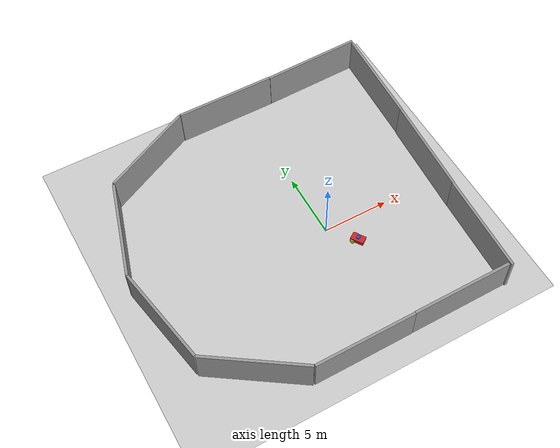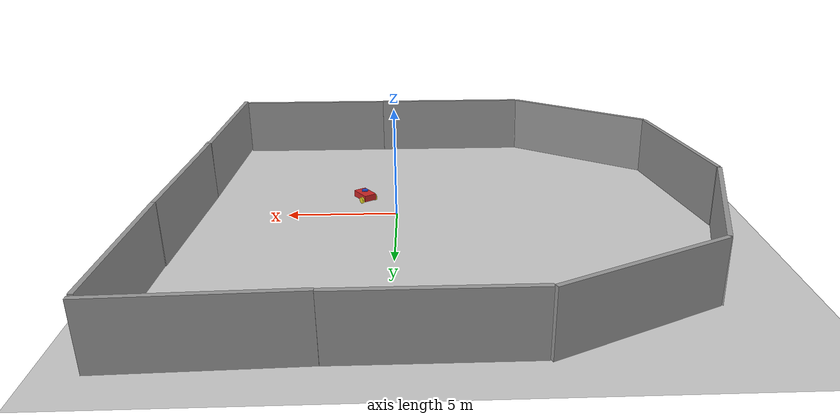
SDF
<sdf version="1.6">
 <world name="default">
  <light name="sun" type="directional">
   <pose>0 0 10 0 -0 0</pose>
   <diffuse>0.8 0.8 0.8 1</diffuse>
   <specular>0.2 0.2 0.2 1</specular>
   <attenuation>
    <range>1000</range>
    <constant>0.9</constant>
    <linear>0.01</linear>
    <quadratic>0.001</quadratic>
   </attenuation>
   <direction>-0.5 0.1 -0.9</direction>
   <spot><inner_angle>0</inner_angle><outer_angle>0</outer_angle><falloff>0</falloff></spot>
  </light>
  <model name="ground_plane">
   <static>1</static>
   <link name="link">
    <collision name="collision">
     <geometry><plane><normal>0 0 1</normal><size>100 100</size></plane></geometry>
     <surface><friction><ode><mu>100</mu><mu2>50</mu2></ode></friction></surface>
    </collision>
    <visual name="visual">
     <cast_shadows>0</cast_shadows>
     <geometry><plane><normal>0 0 1</normal><size>100 100</size></plane></geometry>
     <material>
      <script><uri>file://media/materials/scripts/gazebo.material</uri><name>Gazebo/Grey</name></script>
     </material>
    </visual>
   </link>
  </model>
  <gravity>0 0 -9.8</gravity>
  <magnetic_field>6e-06 2.3e-05 -4.2e-05</magnetic_field>
  <atmosphere type="adiabatic"/>
  <physics type="ode">
   <max_step_size>0.001</max_step_size>
   <real_time_factor>1</real_time_factor>
   <real_time_update_rate>1000</real_time_update_rate>
  </physics>
  <scene><ambient>0.4 0.4 0.4 1</ambient><background>0.7 0.7 0.7 1</background><shadows>1</shadows></scene>
  <audio><device>default</device></audio>
  <spherical_coordinates>
   <surface_model>EARTH_WGS84</surface_model>
   <latitude_deg>0</latitude_deg>
   <longitude_deg>0</longitude_deg>
   <elevation>0</elevation>
   <heading_deg>0</heading_deg>
  </spherical_coordinates>
  <model name="differential_drive_robot">
   <link name="base_footprint">
    <inertial>
     <pose>0.020363 0 0.00543 0 -0 0</pose>
     <mass>564.423</mass>
     <inertia>
      <ixx>20.301</ixx>
      <ixy>0</ixy>
      <ixz>1.21176</ixz>
      <iyy>49.531</iyy>
      <iyz>0</iyz>
      <izz>58.9506</izz>
     </inertia>
    </inertial>
    <collision name="base_footprint_fixed_joint_lump__base_link_collision">
     <geometry><box><size>1 0.6 0.3</size></box></geometry>
     <surface><friction><ode><mu>0.2</mu><mu2>0.2</mu2></ode></friction></surface>
    </collision>
    <collision name="base_footprint_fixed_joint_lump__caster_link_collision_1">
     <pose>0.3 0 -0.1 0 -0 0</pose>
     <geometry><sphere><radius>0.15</radius></sphere></geometry>
     <surface><friction><ode><mu>2e-06</mu><mu2>2e-06</mu2></ode></friction></surface>
    </collision>
    <collision name="base_footprint_fixed_joint_lump__lidar_link_collision_2">
     <pose>0 0 0.24 0 -0 0</pose>
     <geometry><cylinder><length>0.05</length><radius>0.15</radius></cylinder></geometry>
     <surface><friction><ode><mu>0.2</mu><mu2>0.2</mu2></ode></friction></surface>
    </collision>
    <visual name="base_footprint_fixed_joint_lump__base_link_visual">
     <geometry><box><size>1 0.6 0.3</size></box></geometry>
     <material>
      <script><name>Gazebo/Red</name><uri>file://media/materials/scripts/gazebo.material</uri></script>
     </material>
    </visual>
    <visual name="base_footprint_fixed_joint_lump__caster_link_visual_1">
     <pose>0.3 0 -0.1 0 -0 0</pose>
     <geometry><sphere><radius>0.15</radius></sphere></geometry>
     <material>
      <script><name>Gazebo/Blue</name><uri>file://media/materials/scripts/gazebo.material</uri></script>
     </material>
    </visual>
    <visual name="base_footprint_fixed_joint_lump__lidar_link_visual_2">
     <pose>0 0 0.24 0 -0 0</pose>
     <geometry><cylinder><length>0.05</length><radius>0.15</radius></cylinder></geometry>
     <material>
      <script><name>Gazebo/Blue</name><uri>file://media/materials/scripts/gazebo.material</uri></script>
     </material>
    </visual>
    <sensor name="lidar_sensor" type="ray">
     <visualize>1</visualize>
     <update_rate>10</update_rate>
     <ray>
      <scan>
       <horizontal>
        <samples>720</samples>
        <resolution>1</resolution>
        <min_angle>-1.57</min_angle>
        <max_angle>1.57</max_angle>
       </horizontal>
       <vertical><samples>1</samples><min_angle>0</min_angle><max_angle>0</max_angle></vertical>
      </scan>
      <range><min>0</min><max>20</max><resolution>0.05</resolution></range>
     </ray>
     <plugin name="lidar" filename="libgazebo_ros_ray_sensor.so">
      <ros><namespace>/</namespace><remapping>~/out:=scan</remapping></ros>
      <output_type>sensor_msgs/LaserScan</output_type>
      <frame_name>lidar_link</frame_name>
     </plugin>
     <pose>0 0 0.18 0 -0 0</pose>
    </sensor>
   </link>
   <joint name="wheel1_joint" type="revolute">
    <pose relative_to="base_footprint">-0.3 -0.35 -0.1 0 -0 0</pose>
    <parent>base_footprint</parent>
    <child>wheel1_link</child>
    <axis>
     <xyz>0 1 0</xyz>
     <limit><effort>1000</effort><velocity>1000</velocity><lower>-1e+16</lower><upper>1e+16</upper></limit>
     <dynamics>
      <damping>1</damping>
      <friction>1</friction>
      <spring_reference>0</spring_reference>
      <spring_stiffness>0</spring_stiffness>
     </dynamics>
    </axis>
   </joint>
   <link name="wheel1_link">
    <pose relative_to="wheel1_joint">0 0 0 0 -0 0</pose>
    <inertial>
     <mass>19.1559</mass>
     <inertia>
      <ixx>0.123715</ixx>
      <ixy>0</ixy>
      <ixz>0</ixz>
      <iyy>0.123715</iyy>
      <iyz>0</iyz>
      <izz>0.215503</izz>
     </inertia>
    </inertial>
    <collision name="wheel1_link_collision">
     <pose>0 0 0 1.57079 -0 0</pose>
     <geometry><cylinder><length>0.1</length><radius>0.15</radius></cylinder></geometry>
     <surface><friction><ode><mu>0.2</mu><mu2>0.2</mu2></ode></friction></surface>
    </collision>
    <visual name="wheel1_link_visual">
     <pose>0 0 0 1.57079 -0 0</pose>
     <geometry><cylinder><length>0.1</length><radius>0.15</radius></cylinder></geometry>
     <material>
      <script><name>Gazebo/Yellow</name><uri>file://media/materials/scripts/gazebo.material</uri></script>
     </material>
    </visual>
   </link>
   <joint name="wheel2_joint" type="revolute">
    <pose relative_to="base_footprint">-0.3 0.35 -0.1 0 -0 0</pose>
    <parent>base_footprint</parent>
    <child>wheel2_link</child>
    <axis>
     <xyz>0 1 0</xyz>
     <limit><effort>1000</effort><velocity>1000</velocity><lower>-1e+16</lower><upper>1e+16</upper></limit>
     <dynamics>
      <damping>1</damping>
      <friction>1</friction>
      <spring_reference>0</spring_reference>
      <spring_stiffness>0</spring_stiffness>
     </dynamics>
    </axis>
   </joint>
   <link name="wheel2_link">
    <pose relative_to="wheel2_joint">0 0 0 0 -0 0</pose>
    <inertial>
     <mass>19.1559</mass>
     <inertia>
      <ixx>0.123715</ixx>
      <ixy>0</ixy>
      <ixz>0</ixz>
      <iyy>0.123715</iyy>
      <iyz>0</iyz>
      <izz>0.215503</izz>
     </inertia>
    </inertial>
    <collision name="wheel2_link_collision">
     <pose>0 0 0 1.57079 -0 0</pose>
     <geometry><cylinder><length>0.1</length><radius>0.15</radius></cylinder></geometry>
     <surface><friction><ode><mu>0.2</mu><mu2>0.2</mu2></ode></friction></surface>
    </collision>
    <visual name="wheel2_link_visual">
     <pose>0 0 0 1.57079 -0 0</pose>
     <geometry><cylinder><length>0.1</length><radius>0.15</radius></cylinder></geometry>
     <material>
      <script><name>Gazebo/Yellow</name><uri>file://media/materials/scripts/gazebo.material</uri></script>
     </material>
    </visual>
   </link>
   <static>0</static>
   <plugin name="diff_drive" filename="libgazebo_ros_diff_drive.so">
    <num_wheel_pairs>1</num_wheel_pairs>
    <left_joint>wheel2_joint</left_joint>
    <right_joint>wheel1_joint</right_joint>
    <wheel_separation>0.7</wheel_separation>
    <wheel_diameter>0.3</wheel_diameter>
    <max_wheel_torque>5000</max_wheel_torque>
    <max_wheel_acceleration>7.0</max_wheel_acceleration>
    <publish_odom>1</publish_odom>
    <publish_odom_tf>1</publish_odom_tf>
    <publish_wheel_tf>1</publish_wheel_tf>
    <odometry_frame>odom</odometry_frame>
    <robot_base_frame>base_footprint</robot_base_frame>
   </plugin>
   <pose>1.56422 -1.82062 0.249998 -1.3e-05 -7e-06 -0.9766</pose>
  </model>
  <model name="grey_wall">
   <static>1</static>
   <link name="link">
    <pose>0 0 1.4 0 -0 0</pose>
    <collision name="collision"><geometry><box><size>7.5 0.2 2.8</size></box></geometry></collision>
    <visual name="visual">
     <cast_shadows>0</cast_shadows>
     <geometry><box><size>7.5 0.2 2.8</size></box></geometry>
     <material>
      <script>
       <uri>model://grey_wall/materials/scripts</uri>
       <uri>model://grey_wall/materials/textures</uri>
       <name>vrc/grey_wall</name>
      </script>
     </material>
    </visual>
   </link>
   <pose>6.01314 12.5523 0 -0.038533 0.001122 0.028027</pose>
  </model>
  <model name="grey_wall_0">
   <static>1</static>
   <link name="link">
    <pose>0 0 1.4 0 -0 0</pose>
    <collision name="collision"><geometry><box><size>7.5 0.2 2.8</size></box></geometry></collision>
    <visual name="visual">
     <cast_shadows>0</cast_shadows>
     <geometry><box><size>7.5 0.2 2.8</size></box></geometry>
     <material>
      <script>
       <uri>model://grey_wall/materials/scripts</uri>
       <uri>model://grey_wall/materials/textures</uri>
       <name>vrc/grey_wall</name>
      </script>
     </material>
    </visual>
   </link>
   <pose>-1.49273 12.4442 0 -0.050383 0 0</pose>
  </model>
  <model name="grey_wall_1">
   <static>1</static>
   <link name="link">
    <pose>0 0 1.4 0 -0 0</pose>
    <collision name="collision"><geometry><box><size>7.5 0.2 2.8</size></box></geometry></collision>
    <visual name="visual">
     <cast_shadows>0</cast_shadows>
     <geometry><box><size>7.5 0.2 2.8</size></box></geometry>
     <material>
      <script>
       <uri>model://grey_wall/materials/scripts</uri>
       <uri>model://grey_wall/materials/textures</uri>
       <name>vrc/grey_wall</name>
      </script>
     </material>
    </visual>
   </link>
   <pose>4.65413 -9.7096 0 -0.002164 0 0</pose>
  </model>
  <model name="grey_wall_2">
   <static>1</static>
   <link name="link">
    <pose>0 0 1.4 0 -0 0</pose>
    <collision name="collision"><geometry><box><size>7.5 0.2 2.8</size></box></geometry></collision>
    <visual name="visual">
     <cast_shadows>0</cast_shadows>
     <geometry><box><size>7.5 0.2 2.8</size></box></geometry>
     <material>
      <script>
       <uri>model://grey_wall/materials/scripts</uri>
       <uri>model://grey_wall/materials/textures</uri>
       <name>vrc/grey_wall</name>
      </script>
     </material>
    </visual>
   </link>
   <pose>-2.83915 -9.72537 0 0 -0 0</pose>
  </model>
  <model name="grey_wall_3">
   <static>1</static>
   <link name="link">
    <pose>0 0 1.4 0 -0 0</pose>
    <collision name="collision"><geometry><box><size>7.5 0.2 2.8</size></box></geometry></collision>
    <visual name="visual">
     <cast_shadows>0</cast_shadows>
     <geometry><box><size>7.5 0.2 2.8</size></box></geometry>
     <material>
      <script>
       <uri>model://grey_wall/materials/scripts</uri>
       <uri>model://grey_wall/materials/textures</uri>
       <name>vrc/grey_wall</name>
      </script>
     </material>
    </visual>
   </link>
   <pose>8.71683 -6.15023 4e-06 -0.004976 -0.003845 -1.61656</pose>
  </model>
  <model name="grey_wall_4">
   <static>1</static>
   <link name="link">
    <pose>0 0 1.4 0 -0 0</pose>
    <collision name="collision"><geometry><box><size>7.5 0.2 2.8</size></box></geometry></collision>
    <visual name="visual">
     <cast_shadows>0</cast_shadows>
     <geometry><box><size>7.5 0.2 2.8</size></box></geometry>
     <material>
      <script>
       <uri>model://grey_wall/materials/scripts</uri>
       <uri>model://grey_wall/materials/textures</uri>
       <name>vrc/grey_wall</name>
      </script>
     </material>
    </visual>
   </link>
   <pose>9.08198 1.33294 2e-06 -0.021435 -0 -1.62756</pose>
  </model>
  <model name="grey_wall_5">
   <static>1</static>
   <link name="link">
    <pose>0 0 1.4 0 -0 0</pose>
    <collision name="collision"><geometry><box><size>7.5 0.2 2.8</size></box></geometry></collision>
    <visual name="visual">
     <cast_shadows>0</cast_shadows>
     <geometry><box><size>7.5 0.2 2.8</size></box></geometry>
     <material>
      <script>
       <uri>model://grey_wall/materials/scripts</uri>
       <uri>model://grey_wall/materials/textures</uri>
       <name>vrc/grey_wall</name>
      </script>
     </material>
    </visual>
   </link>
   <pose>9.48852 8.79744 2e-06 -0.011884 0 -1.61273</pose>
  </model>
  <model name="grey_wall_6">
   <static>1</static>
   <link name="link">
    <pose>0 0 1.4 0 -0 0</pose>
    <collision name="collision"><geometry><box><size>7.5 0.2 2.8</size></box></geometry></collision>
    <visual name="visual">
     <cast_shadows>0</cast_shadows>
     <geometry><box><size>7.5 0.2 2.8</size></box></geometry>
     <material>
      <script>
       <uri>model://grey_wall/materials/scripts</uri>
       <uri>model://grey_wall/materials/textures</uri>
       <name>vrc/grey_wall</name>
      </script>
     </material>
    </visual>
   </link>
   <pose>-9.75559 -7.6138 -3e-06 -0.012502 0.000489 -0.600288</pose>
  </model>
  <model name="grey_wall_7">
   <static>1</static>
   <link name="link">
    <pose>0 0 1.4 0 -0 0</pose>
    <collision name="collision"><geometry><box><size>7.5 0.2 2.8</size></box></geometry></collision>
    <visual name="visual">
     <cast_shadows>0</cast_shadows>
     <geometry><box><size>7.5 0.2 2.8</size></box></geometry>
     <material>
      <script>
       <uri>model://grey_wall/materials/scripts</uri>
       <uri>model://grey_wall/materials/textures</uri>
       <name>vrc/grey_wall</name>
      </script>
     </material>
    </visual>
   </link>
   <pose>-8.6492 10.8504 0 -0.029402 0.006952 0.459657</pose>
  </model>
  <model name="grey_wall_8">
   <static>1</static>
   <link name="link">
    <pose>0 0 1.4 0 -0 0</pose>
    <collision name="collision"><geometry><box><size>7.5 0.2 2.8</size></box></geometry></collision>
    <visual name="visual">
     <cast_shadows>0</cast_shadows>
     <geometry><box><size>7.5 0.2 2.8</size></box></geometry>
     <material>
      <script>
       <uri>model://grey_wall/materials/scripts</uri>
       <uri>model://grey_wall/materials/textures</uri>
       <name>vrc/grey_wall</name>
      </script>
     </material>
    </visual>
   </link>
   <pose>-13.1375 5.59068 0 -0.00237 -0 1.27924</pose>
  </model>
  <model name="grey_wall_9">
   <static>1</static>
   <link name="link">
    <pose>0 0 1.4 0 -0 0</pose>
    <collision name="collision"><geometry><box><size>7.5 0.2 2.8</size></box></geometry></collision>
    <visual name="visual">
     <cast_shadows>0</cast_shadows>
     <geometry><box><size>7.5 0.2 2.8</size></box></geometry>
     <material>
      <script>
       <uri>model://grey_wall/materials/scripts</uri>
       <uri>model://grey_wall/materials/textures</uri>
       <name>vrc/grey_wall</name>
      </script>
     </material>
    </visual>
   </link>
   <pose>-13.5205 -1.74293 0 0 0 -1.38986</pose>
  </model>
 </world>
</sdf>
